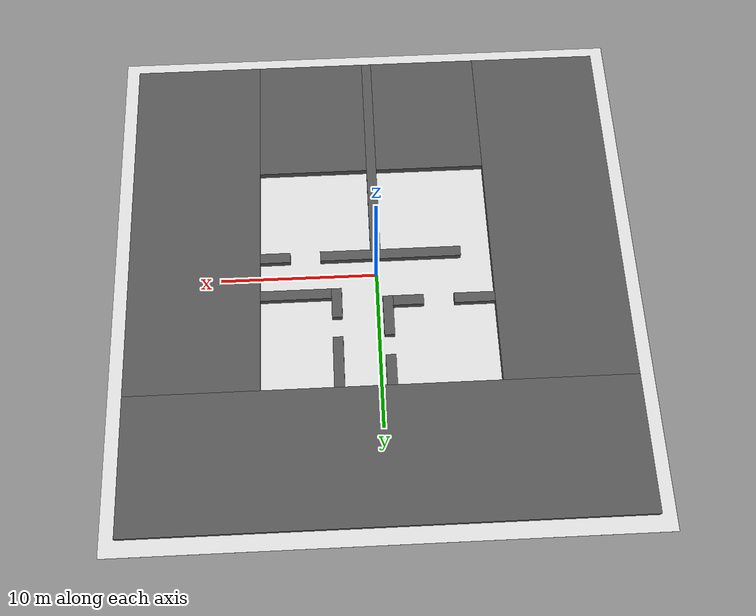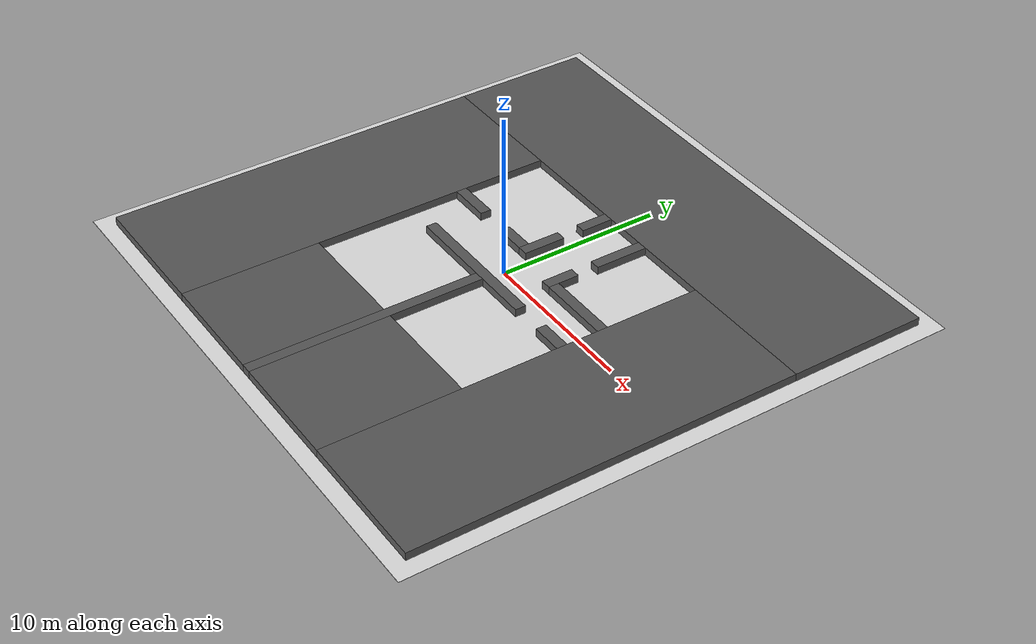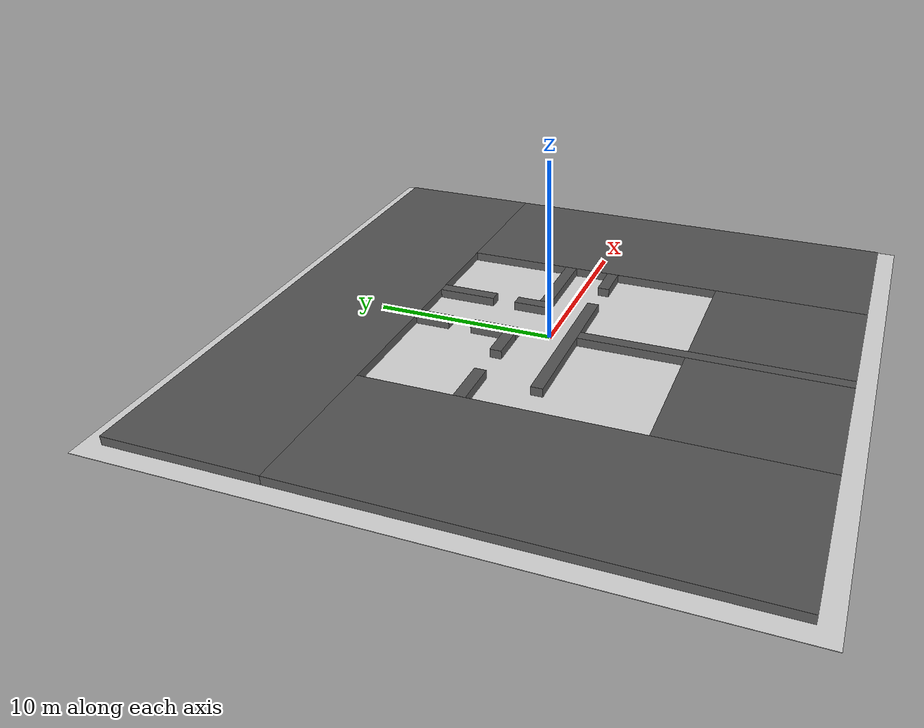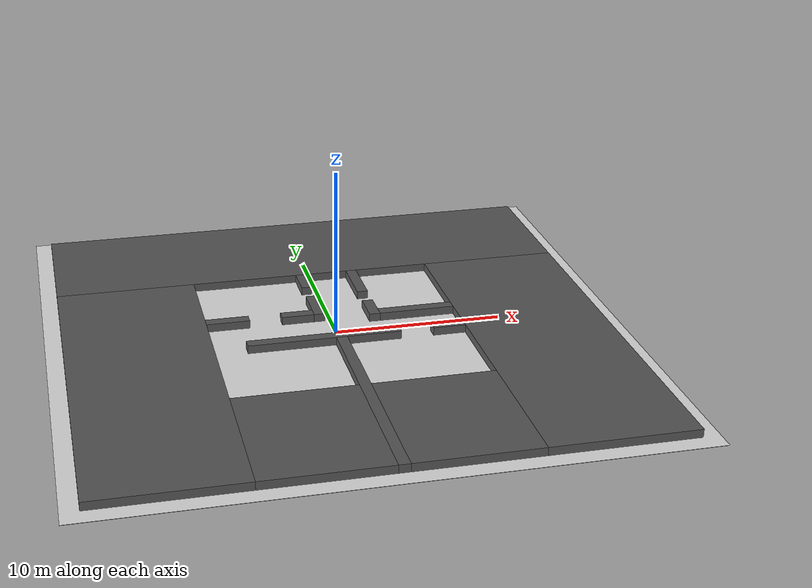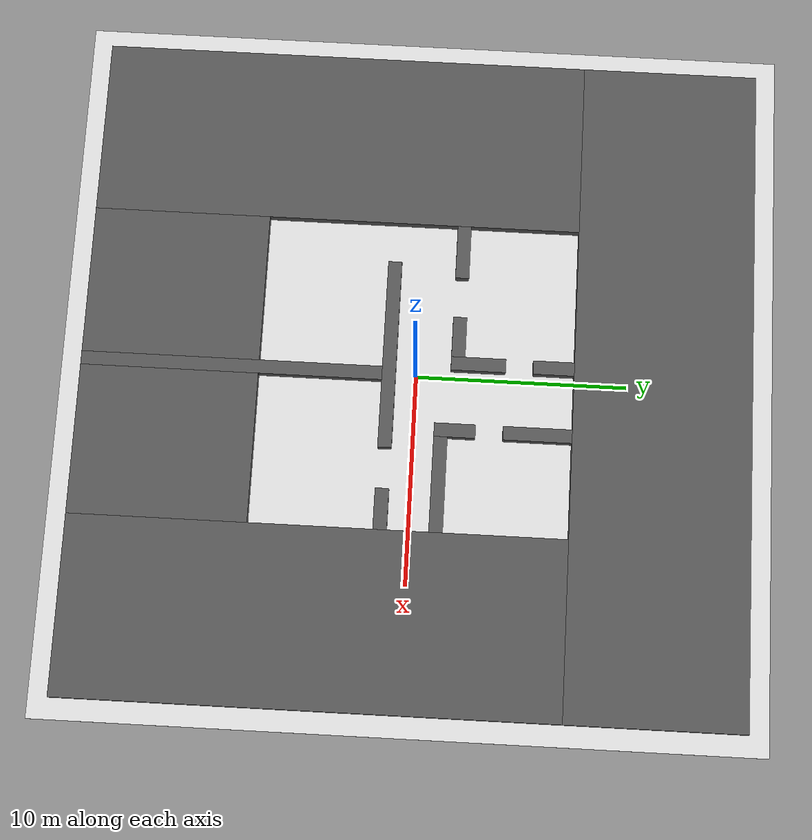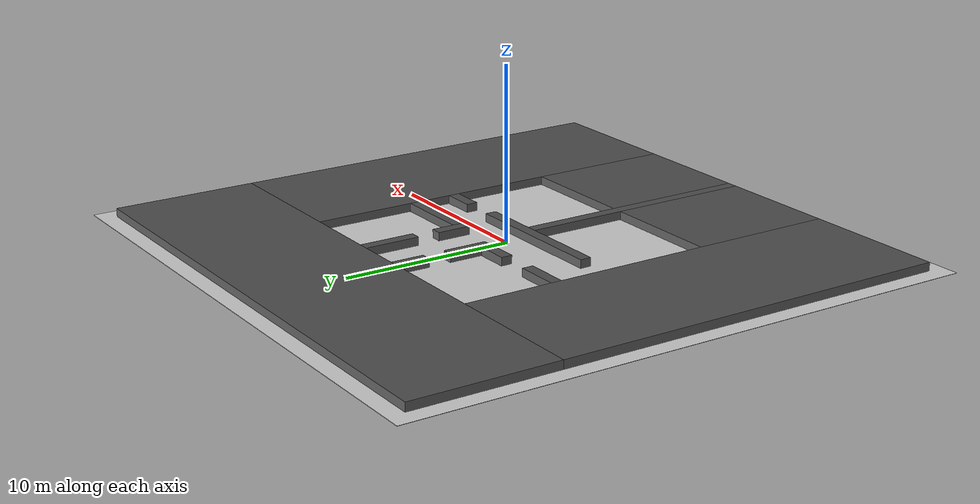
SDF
<?xml version="1.0"?>
<sdf version="1.9">
  <world name="train_map_l3">
    <plugin filename="ignition-gazebo-physics-system" name="ignition::gazebo::systems::Physics"/>
    <plugin filename="ignition-gazebo-user-commands-system" name="ignition::gazebo::systems::UserCommands"/>
    <plugin filename="ignition-gazebo-scene-broadcaster-system" name="ignition::gazebo::systems::SceneBroadcaster"/>
    <plugin filename="ignition-gazebo-sensors-system" name="ignition::gazebo::systems::Sensors">
      <render_engine>ogre2</render_engine>
    </plugin>
    <light name="sun" type="directional">
      <cast_shadows>true</cast_shadows>
      <pose>0 0 10 0 0 0</pose>
      <diffuse>0.8 0.8 0.8 1</diffuse>
      <specular>0.2 0.2 0.2 1</specular>
      <direction>-0.5 0.1 -0.9</direction>
    </light>
    <model name="ground_plane">
      <static>true</static>
      <link name="link">
        <collision name="collision">
          <geometry>
            <box><size>33.850000 33.850000 0.02</size></box>
          </geometry>
        </collision>
        <visual name="visual">
          <geometry>
            <box><size>33.850000 33.850000 0.02</size></box>
          </geometry>
          <material><ambient>0.9 0.9 0.9 1</ambient><diffuse>0.9 0.9 0.9 1</diffuse></material>
        </visual>
      </link>
    </model>
    <model name="rl_explore_obstacles">
      <static>true</static>
      <link name="wall_0000">
        <pose>0.000000 11.700000 0.250000 0 0 0</pose>
        <collision name="collision">
          <geometry>
            <box><size>31.850000 8.450000 0.500000</size></box>
          </geometry>
        </collision>
        <visual name="visual">
          <geometry>
            <box><size>31.850000 8.450000 0.500000</size></box>
          </geometry>
          <material><ambient>0.25 0.25 0.25 1</ambient><diffuse>0.35 0.35 0.35 1</diffuse></material>
        </visual>
      </link>
      <link name="wall_0001">
        <pose>-11.700000 -4.225000 0.250000 0 0 0</pose>
        <collision name="collision">
          <geometry>
            <box><size>8.450000 23.400000 0.500000</size></box>
          </geometry>
        </collision>
        <visual name="visual">
          <geometry>
            <box><size>8.450000 23.400000 0.500000</size></box>
          </geometry>
          <material><ambient>0.25 0.25 0.25 1</ambient><diffuse>0.35 0.35 0.35 1</diffuse></material>
        </visual>
      </link>
      <link name="wall_0002">
        <pose>-0.650000 6.500000 0.250000 0 0 0</pose>
        <collision name="collision">
          <geometry>
            <box><size>0.650000 1.950000 0.500000</size></box>
          </geometry>
        </collision>
        <visual name="visual">
          <geometry>
            <box><size>0.650000 1.950000 0.500000</size></box>
          </geometry>
          <material><ambient>0.25 0.25 0.25 1</ambient><diffuse>0.35 0.35 0.35 1</diffuse></material>
        </visual>
      </link>
      <link name="wall_0003">
        <pose>2.600000 5.850000 0.250000 0 0 0</pose>
        <collision name="collision">
          <geometry>
            <box><size>0.650000 3.250000 0.500000</size></box>
          </geometry>
        </collision>
        <visual name="visual">
          <geometry>
            <box><size>0.650000 3.250000 0.500000</size></box>
          </geometry>
          <material><ambient>0.25 0.25 0.25 1</ambient><diffuse>0.35 0.35 0.35 1</diffuse></material>
        </visual>
      </link>
      <link name="wall_0004">
        <pose>11.700000 -4.225000 0.250000 0 0 0</pose>
        <collision name="collision">
          <geometry>
            <box><size>8.450000 23.400000 0.500000</size></box>
          </geometry>
        </collision>
        <visual name="visual">
          <geometry>
            <box><size>8.450000 23.400000 0.500000</size></box>
          </geometry>
          <material><ambient>0.25 0.25 0.25 1</ambient><diffuse>0.35 0.35 0.35 1</diffuse></material>
        </visual>
      </link>
      <link name="wall_0005">
        <pose>-0.650000 2.925000 0.250000 0 0 0</pose>
        <collision name="collision">
          <geometry>
            <box><size>0.650000 2.600000 0.500000</size></box>
          </geometry>
        </collision>
        <visual name="visual">
          <geometry>
            <box><size>0.650000 2.600000 0.500000</size></box>
          </geometry>
          <material><ambient>0.25 0.25 0.25 1</ambient><diffuse>0.35 0.35 0.35 1</diffuse></material>
        </visual>
      </link>
      <link name="wall_0006">
        <pose>2.600000 1.950000 0.250000 0 0 0</pose>
        <collision name="collision">
          <geometry>
            <box><size>0.650000 1.950000 0.500000</size></box>
          </geometry>
        </collision>
        <visual name="visual">
          <geometry>
            <box><size>0.650000 1.950000 0.500000</size></box>
          </geometry>
          <material><ambient>0.25 0.25 0.25 1</ambient><diffuse>0.35 0.35 0.35 1</diffuse></material>
        </visual>
      </link>
      <link name="wall_0007">
        <pose>-6.175000 1.950000 0.250000 0 0 0</pose>
        <collision name="collision">
          <geometry>
            <box><size>2.600000 0.650000 0.500000</size></box>
          </geometry>
        </collision>
        <visual name="visual">
          <geometry>
            <box><size>2.600000 0.650000 0.500000</size></box>
          </geometry>
          <material><ambient>0.25 0.25 0.25 1</ambient><diffuse>0.35 0.35 0.35 1</diffuse></material>
        </visual>
      </link>
      <link name="wall_0008">
        <pose>-1.950000 1.950000 0.250000 0 0 0</pose>
        <collision name="collision">
          <geometry>
            <box><size>1.950000 0.650000 0.500000</size></box>
          </geometry>
        </collision>
        <visual name="visual">
          <geometry>
            <box><size>1.950000 0.650000 0.500000</size></box>
          </geometry>
          <material><ambient>0.25 0.25 0.25 1</ambient><diffuse>0.35 0.35 0.35 1</diffuse></material>
        </visual>
      </link>
      <link name="wall_0009">
        <pose>5.200000 1.300000 0.250000 0 0 0</pose>
        <collision name="collision">
          <geometry>
            <box><size>4.550000 0.650000 0.500000</size></box>
          </geometry>
        </collision>
        <visual name="visual">
          <geometry>
            <box><size>4.550000 0.650000 0.500000</size></box>
          </geometry>
          <material><ambient>0.25 0.25 0.25 1</ambient><diffuse>0.35 0.35 0.35 1</diffuse></material>
        </visual>
      </link>
      <link name="wall_0010">
        <pose>-0.975000 -1.300000 0.250000 0 0 0</pose>
        <collision name="collision">
          <geometry>
            <box><size>9.100000 0.650000 0.500000</size></box>
          </geometry>
        </collision>
        <visual name="visual">
          <geometry>
            <box><size>9.100000 0.650000 0.500000</size></box>
          </geometry>
          <material><ambient>0.25 0.25 0.25 1</ambient><diffuse>0.35 0.35 0.35 1</diffuse></material>
        </visual>
      </link>
      <link name="wall_0011">
        <pose>6.500000 -1.300000 0.250000 0 0 0</pose>
        <collision name="collision">
          <geometry>
            <box><size>1.950000 0.650000 0.500000</size></box>
          </geometry>
        </collision>
        <visual name="visual">
          <geometry>
            <box><size>1.950000 0.650000 0.500000</size></box>
          </geometry>
          <material><ambient>0.25 0.25 0.25 1</ambient><diffuse>0.35 0.35 0.35 1</diffuse></material>
        </visual>
      </link>
      <link name="wall_0012">
        <pose>0.000000 -8.775000 0.250000 0 0 0</pose>
        <collision name="collision">
          <geometry>
            <box><size>0.650000 14.300000 0.500000</size></box>
          </geometry>
        </collision>
        <visual name="visual">
          <geometry>
            <box><size>0.650000 14.300000 0.500000</size></box>
          </geometry>
          <material><ambient>0.25 0.25 0.25 1</ambient><diffuse>0.35 0.35 0.35 1</diffuse></material>
        </visual>
      </link>
      <link name="wall_0013">
        <pose>-3.900000 -11.700000 0.250000 0 0 0</pose>
        <collision name="collision">
          <geometry>
            <box><size>7.150000 8.450000 0.500000</size></box>
          </geometry>
        </collision>
        <visual name="visual">
          <geometry>
            <box><size>7.150000 8.450000 0.500000</size></box>
          </geometry>
          <material><ambient>0.25 0.25 0.25 1</ambient><diffuse>0.35 0.35 0.35 1</diffuse></material>
        </visual>
      </link>
      <link name="wall_0014">
        <pose>3.900000 -11.700000 0.250000 0 0 0</pose>
        <collision name="collision">
          <geometry>
            <box><size>7.150000 8.450000 0.500000</size></box>
          </geometry>
        </collision>
        <visual name="visual">
          <geometry>
            <box><size>7.150000 8.450000 0.500000</size></box>
          </geometry>
          <material><ambient>0.25 0.25 0.25 1</ambient><diffuse>0.35 0.35 0.35 1</diffuse></material>
        </visual>
      </link>
    </model>
  </world>
</sdf>
